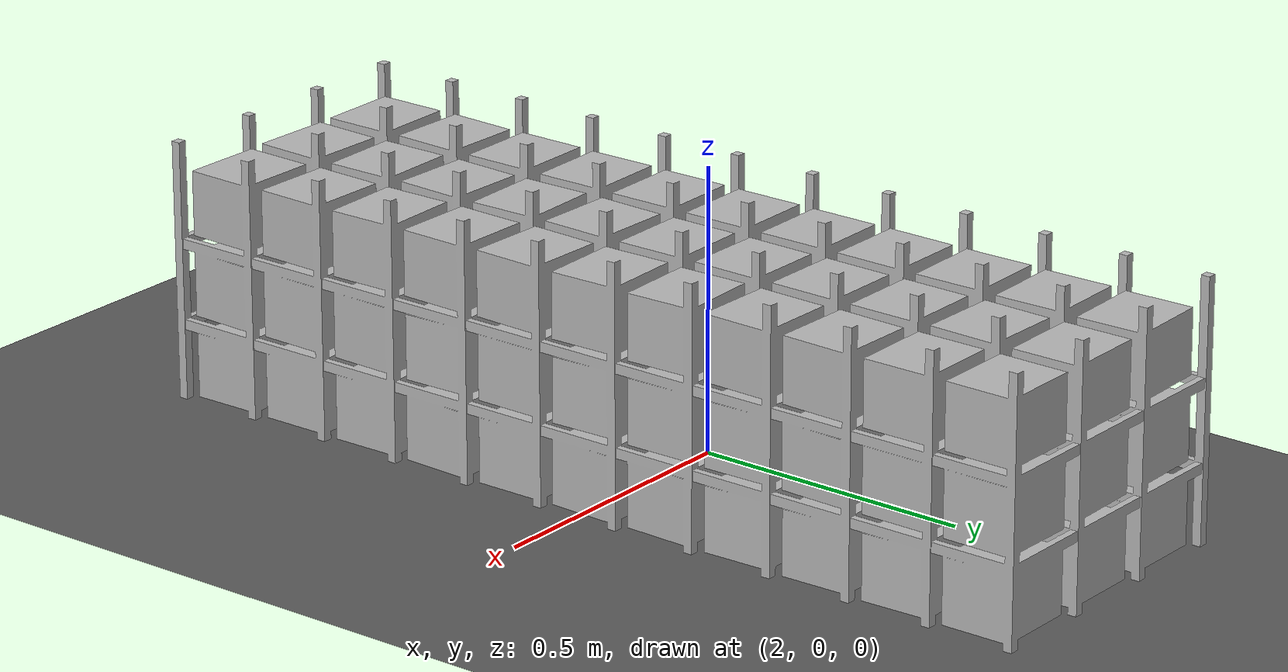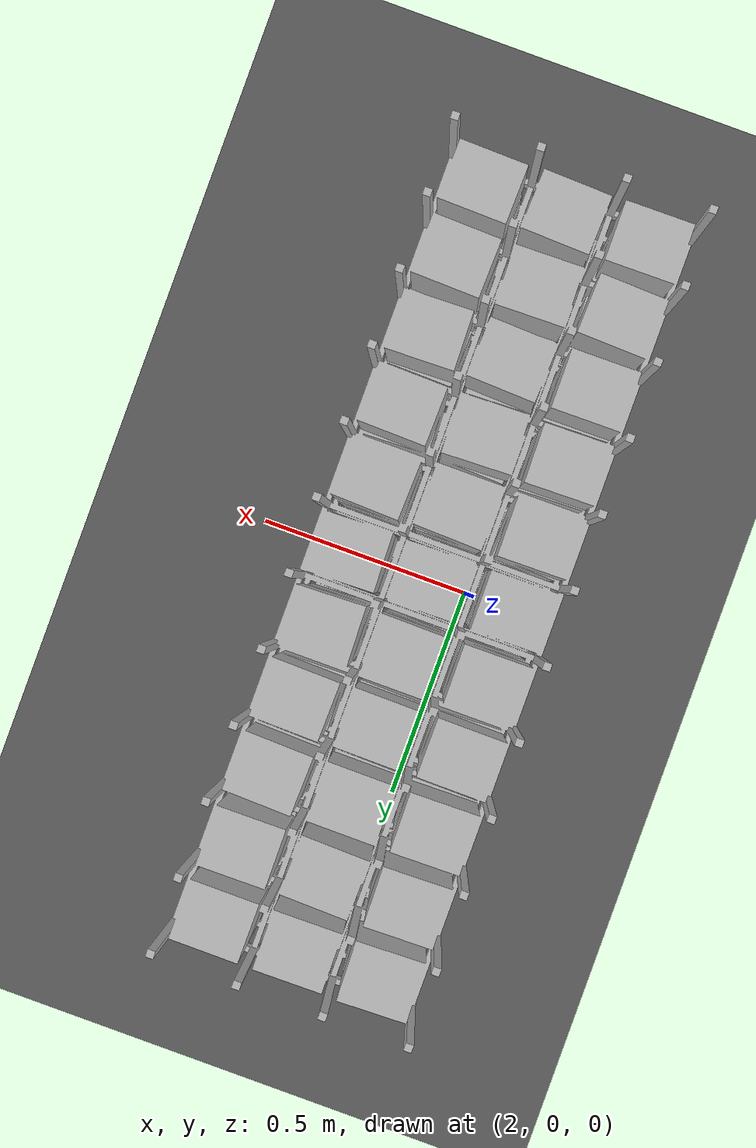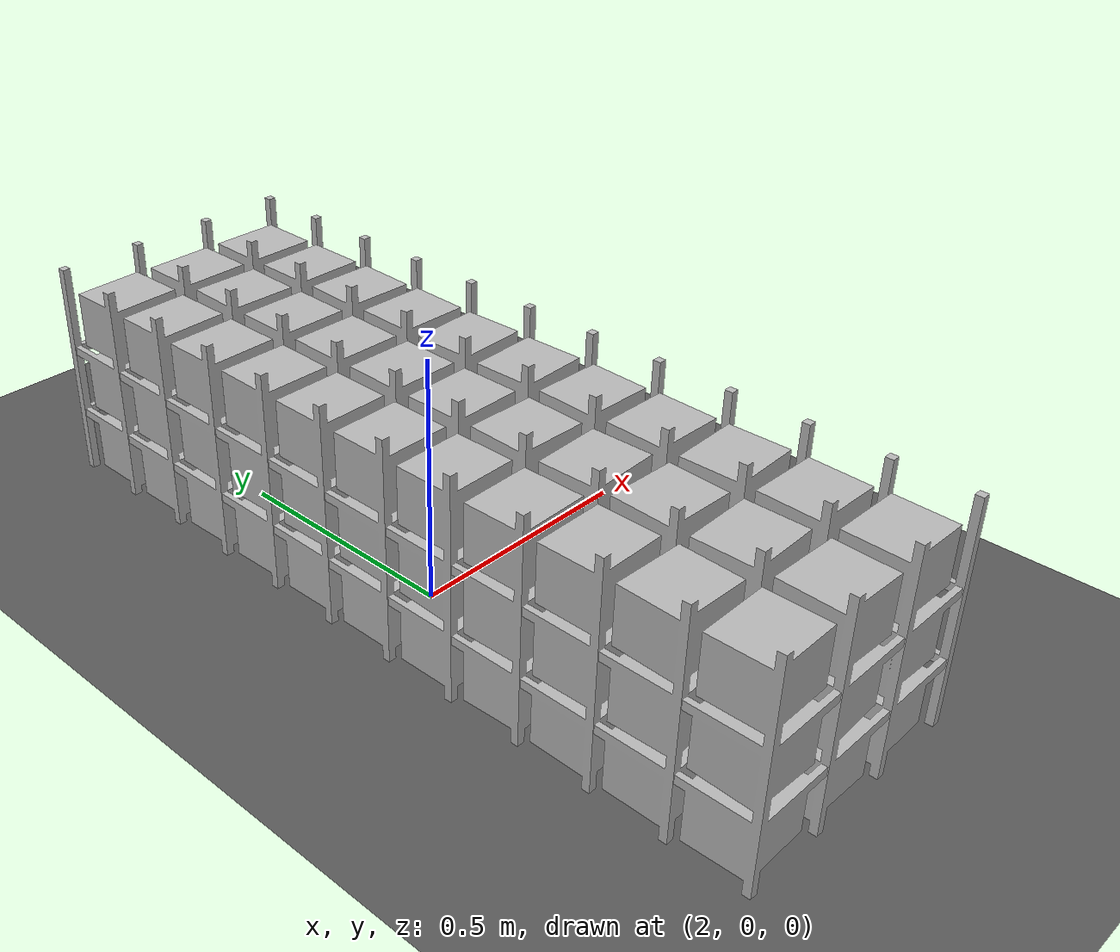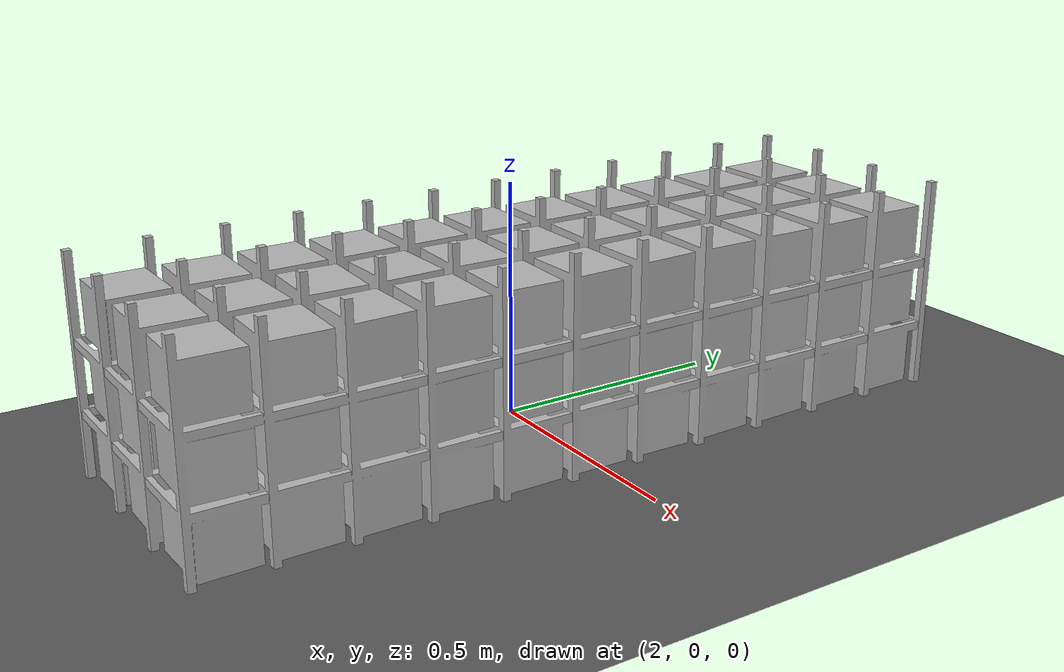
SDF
<sdf version="1.7">
 <world name="demo_facility_scaled">
  <model name="ground_plane">
   <static>true</static>
   <link name="link">
    <collision name="collision">
     <geometry><plane><normal>0 0 1</normal><size>12.0 10.0</size></plane></geometry>
    </collision>
    <visual name="visual">
     <geometry><plane><normal>0 0 1</normal><size>12.0 10.0</size></plane></geometry>
     <material><ambient>0.3 0.3 0.3 1</ambient><diffuse>0.35 0.35 0.35 1</diffuse></material>
     <plugin filename="ignition-gazebo-thermal-system" name="ignition::gazebo::systems::Thermal">
      <temperature>288.15</temperature>
     </plugin>
    </visual>
   </link>
  </model>
  <model name="bale_storage">
   <static>true</static>
   <pose>4.636175 0.471161 0 0 0 3.141592</pose>
   <link name="link">
    <visual name="visual">
     <geometry>
      <mesh>
       <uri>model://bale_storage/meshes/bale_storage.obj</uri>
       <scale>0.09919193 0.09919193 0.09919193</scale>
      </mesh>
     </geometry>
     <plugin filename="ignition-gazebo-thermal-system" name="ignition::gazebo::systems::Thermal">
      <temperature>327.35</temperature>
     </plugin>
    </visual>
    <collision name="collision">
     <geometry>
      <mesh>
       <uri>model://bale_storage/meshes/bale_storage.obj</uri>
       <scale>0.09919193 0.09919193 0.09919193</scale>
      </mesh>
     </geometry>
    </collision>
   </link>
  </model>
 </world>
</sdf>
